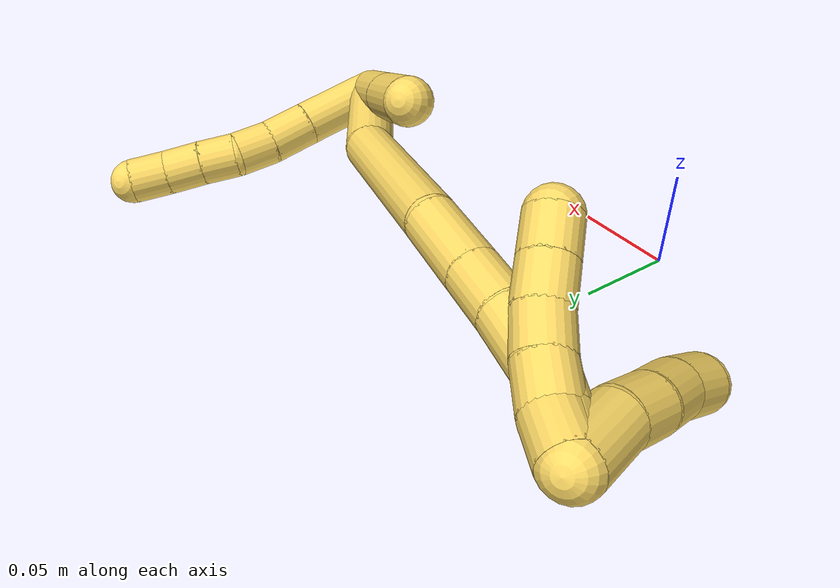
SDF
<sdf version="1.7">
 <world name="default">
  <model name="5">
   <static>0</static>
   <link name="5">
    <collision name="collision-cylinder-e_1_2_8">
     <pose>0.001556 0.017371 0.014116 -0.888427 0.069396 -0.033039</pose>
     <geometry><cylinder><radius>0.0125</radius><length>0.044875</length></cylinder></geometry>
     <surface>
      <friction><ode><mu>1.16</mu><mu2>1.16</mu2><slip1>0</slip1><slip2>0</slip2></ode></friction>
      <contact><ode><kp>1e+06</kp><kd>1</kd><max_vel>0</max_vel><min_depth>0.001</min_depth></ode></contact>
     </surface>
    </collision>
    <visual name="visual-cylinder-e_1_2_8">
     <pose>0.001556 0.017371 0.014116 -0.888427 0.069396 -0.033039</pose>
     <geometry><cylinder><radius>0.0125</radius><length>0.044875</length></cylinder></geometry>
     <material><ambient>1 0.858824 0.4 1</ambient></material>
    </visual>
    <collision name="collision-cylinder-e_2_8_9">
     <pose>0.003911 0.044136 0.035658 -0.901805 0.066678 -0.032292</pose>
     <geometry><cylinder><radius>0.0125</radius><length>0.024001</length></cylinder></geometry>
     <surface>
      <friction><ode><mu>1.16</mu><mu2>1.16</mu2><slip1>0</slip1><slip2>0</slip2></ode></friction>
      <contact><ode><kp>1e+06</kp><kd>1</kd><max_vel>0</max_vel><min_depth>0.001</min_depth></ode></contact>
     </surface>
    </collision>
    <visual name="visual-cylinder-e_2_8_9">
     <pose>0.003911 0.044136 0.035658 -0.901805 0.066678 -0.032292</pose>
     <geometry><cylinder><radius>0.0125</radius><length>0.024001</length></cylinder></geometry>
     <material><ambient>1 0.858824 0.4 1</ambient></material>
    </visual>
    <collision name="collision-cylinder-e_3_9_10">
     <pose>0.006406 0.061042 0.049979 -0.828285 0.164681 -0.07252</pose>
     <geometry><cylinder><radius>0.0125</radius><length>0.020676</length></cylinder></geometry>
     <surface>
      <friction><ode><mu>1.16</mu><mu2>1.16</mu2><slip1>0</slip1><slip2>0</slip2></ode></friction>
      <contact><ode><kp>1e+06</kp><kd>1</kd><max_vel>0</max_vel><min_depth>0.001</min_depth></ode></contact>
     </surface>
    </collision>
    <visual name="visual-cylinder-e_3_9_10">
     <pose>0.006406 0.061042 0.049979 -0.828285 0.164681 -0.07252</pose>
     <geometry><cylinder><radius>0.0125</radius><length>0.020676</length></cylinder></geometry>
     <material><ambient>1 0.858824 0.4 1</ambient></material>
    </visual>
    <collision name="collision-cylinder-e_4_10_11">
     <pose>0.011832 0.076625 0.061496 -1.05065 0.381661 -0.223026</pose>
     <geometry><cylinder><radius>0.0125</radius><length>0.02004</length></cylinder></geometry>
     <surface>
      <friction><ode><mu>1.16</mu><mu2>1.16</mu2><slip1>0</slip1><slip2>0</slip2></ode></friction>
      <contact><ode><kp>1e+06</kp><kd>1</kd><max_vel>0</max_vel><min_depth>0.001</min_depth></ode></contact>
     </surface>
    </collision>
    <visual name="visual-cylinder-e_4_10_11">
     <pose>0.011832 0.076625 0.061496 -1.05065 0.381661 -0.223026</pose>
     <geometry><cylinder><radius>0.0125</radius><length>0.02004</length></cylinder></geometry>
     <material><ambient>1 0.858824 0.4 1</ambient></material>
    </visual>
    <collision name="collision-cylinder-e_5_11_12">
     <pose>0.019026 0.093053 0.070586 -1.07991 0.35018 -0.211268</pose>
     <geometry><cylinder><radius>0.0125</radius><length>0.020182</length></cylinder></geometry>
     <surface>
      <friction><ode><mu>1.16</mu><mu2>1.16</mu2><slip1>0</slip1><slip2>0</slip2></ode></friction>
      <contact><ode><kp>1e+06</kp><kd>1</kd><max_vel>0</max_vel><min_depth>0.001</min_depth></ode></contact>
     </surface>
    </collision>
    <visual name="visual-cylinder-e_5_11_12">
     <pose>0.019026 0.093053 0.070586 -1.07991 0.35018 -0.211268</pose>
     <geometry><cylinder><radius>0.0125</radius><length>0.020182</length></cylinder></geometry>
     <material><ambient>1 0.858824 0.4 1</ambient></material>
    </visual>
    <collision name="collision-cylinder-e_6_12_6">
     <pose>0.025967 0.10939 0.080206 -0.997415 0.351136 -0.192629</pose>
     <geometry><cylinder><radius>0.0125</radius><length>0.020226</length></cylinder></geometry>
     <surface>
      <friction><ode><mu>1.16</mu><mu2>1.16</mu2><slip1>0</slip1><slip2>0</slip2></ode></friction>
      <contact><ode><kp>1e+06</kp><kd>1</kd><max_vel>0</max_vel><min_depth>0.001</min_depth></ode></contact>
     </surface>
    </collision>
    <visual name="visual-cylinder-e_6_12_6">
     <pose>0.025967 0.10939 0.080206 -0.997415 0.351136 -0.192629</pose>
     <geometry><cylinder><radius>0.0125</radius><length>0.020226</length></cylinder></geometry>
     <material><ambient>1 0.858824 0.4 1</ambient></material>
    </visual>
    <collision name="collision-cylinder-e_1_2_13">
     <pose>-0.012386 -0.009703 0.021059 0.43178 -0.490614 -0.109697</pose>
     <geometry><cylinder><radius>0.0125</radius><length>0.052575</length></cylinder></geometry>
     <surface>
      <friction><ode><mu>1.16</mu><mu2>1.16</mu2><slip1>0</slip1><slip2>0</slip2></ode></friction>
      <contact><ode><kp>1e+06</kp><kd>1</kd><max_vel>0</max_vel><min_depth>0.001</min_depth></ode></contact>
     </surface>
    </collision>
    <visual name="visual-cylinder-e_1_2_13">
     <pose>-0.012386 -0.009703 0.021059 0.43178 -0.490614 -0.109697</pose>
     <geometry><cylinder><radius>0.0125</radius><length>0.052575</length></cylinder></geometry>
     <material><ambient>1 0.858824 0.4 1</ambient></material>
    </visual>
    <collision name="collision-cylinder-e_2_13_5">
     <pose>-0.035987 -0.02822 0.06106 0.435473 -0.492675 -0.111147</pose>
     <geometry><cylinder><radius>0.0125</radius><length>0.047425</length></cylinder></geometry>
     <surface>
      <friction><ode><mu>1.16</mu><mu2>1.16</mu2><slip1>0</slip1><slip2>0</slip2></ode></friction>
      <contact><ode><kp>1e+06</kp><kd>1</kd><max_vel>0</max_vel><min_depth>0.001</min_depth></ode></contact>
     </surface>
    </collision>
    <visual name="visual-cylinder-e_2_13_5">
     <pose>-0.035987 -0.02822 0.06106 0.435473 -0.492675 -0.111147</pose>
     <geometry><cylinder><radius>0.0125</radius><length>0.047425</length></cylinder></geometry>
     <material><ambient>1 0.858824 0.4 1</ambient></material>
    </visual>
    <collision name="collision-cylinder-e_1_2_14">
     <pose>-0.021661 0.000817 0.028672 -0.028492 -0.646808 0.00955</pose>
     <geometry><cylinder><radius>0.0125</radius><length>0.071888</length></cylinder></geometry>
     <surface>
      <friction><ode><mu>1.16</mu><mu2>1.16</mu2><slip1>0</slip1><slip2>0</slip2></ode></friction>
      <contact><ode><kp>1e+06</kp><kd>1</kd><max_vel>0</max_vel><min_depth>0.001</min_depth></ode></contact>
     </surface>
    </collision>
    <visual name="visual-cylinder-e_1_2_14">
     <pose>-0.021661 0.000817 0.028672 -0.028492 -0.646808 0.00955</pose>
     <geometry><cylinder><radius>0.0125</radius><length>0.071888</length></cylinder></geometry>
     <material><ambient>1 0.858824 0.4 1</ambient></material>
    </visual>
    <collision name="collision-cylinder-e_2_14_15">
     <pose>-0.075424 -0.011544 0.089777 0.385959 -0.742114 -0.151769</pose>
     <geometry><cylinder><radius>0.0125</radius><length>0.094996</length></cylinder></geometry>
     <surface>
      <friction><ode><mu>1.16</mu><mu2>1.16</mu2><slip1>0</slip1><slip2>0</slip2></ode></friction>
      <contact><ode><kp>1e+06</kp><kd>1</kd><max_vel>0</max_vel><min_depth>0.001</min_depth></ode></contact>
     </surface>
    </collision>
    <visual name="visual-cylinder-e_2_14_15">
     <pose>-0.075424 -0.011544 0.089777 0.385959 -0.742114 -0.151769</pose>
     <geometry><cylinder><radius>0.0125</radius><length>0.094996</length></cylinder></geometry>
     <material><ambient>1 0.858824 0.4 1</ambient></material>
    </visual>
    <collision name="collision-cylinder-e_3_15_16">
     <pose>-0.1231 -0.028759 0.132415 0.376559 -0.956966 -0.197016</pose>
     <geometry><cylinder><radius>0.0125</radius><length>0.038104</length></cylinder></geometry>
     <surface>
      <friction><ode><mu>1.16</mu><mu2>1.16</mu2><slip1>0</slip1><slip2>0</slip2></ode></friction>
      <contact><ode><kp>1e+06</kp><kd>1</kd><max_vel>0</max_vel><min_depth>0.001</min_depth></ode></contact>
     </surface>
    </collision>
    <visual name="visual-cylinder-e_3_15_16">
     <pose>-0.1231 -0.028759 0.132415 0.376559 -0.956966 -0.197016</pose>
     <geometry><cylinder><radius>0.0125</radius><length>0.038104</length></cylinder></geometry>
     <material><ambient>1 0.858824 0.4 1</ambient></material>
    </visual>
    <collision name="collision-cylinder-e_4_16_17">
     <pose>-0.148916 -0.035444 0.149337 0.375829 -0.956699 -0.196564</pose>
     <geometry><cylinder><radius>0.0125</radius><length>0.025062</length></cylinder></geometry>
     <surface>
      <friction><ode><mu>1.16</mu><mu2>1.16</mu2><slip1>0</slip1><slip2>0</slip2></ode></friction>
      <contact><ode><kp>1e+06</kp><kd>1</kd><max_vel>0</max_vel><min_depth>0.001</min_depth></ode></contact>
     </surface>
    </collision>
    <visual name="visual-cylinder-e_4_16_17">
     <pose>-0.148916 -0.035444 0.149337 0.375829 -0.956699 -0.196564</pose>
     <geometry><cylinder><radius>0.0125</radius><length>0.025062</length></cylinder></geometry>
     <material><ambient>1 0.858824 0.4 1</ambient></material>
    </visual>
    <collision name="collision-cylinder-e_5_17_18">
     <pose>-0.171395 -0.0401 0.163116 0.276655 -1.03041 -0.157328</pose>
     <geometry><cylinder><radius>0.0125</radius><length>0.028541</length></cylinder></geometry>
     <surface>
      <friction><ode><mu>1.16</mu><mu2>1.16</mu2><slip1>0</slip1><slip2>0</slip2></ode></friction>
      <contact><ode><kp>1e+06</kp><kd>1</kd><max_vel>0</max_vel><min_depth>0.001</min_depth></ode></contact>
     </surface>
    </collision>
    <visual name="visual-cylinder-e_5_17_18">
     <pose>-0.171395 -0.0401 0.163116 0.276655 -1.03041 -0.157328</pose>
     <geometry><cylinder><radius>0.0125</radius><length>0.028541</length></cylinder></geometry>
     <material><ambient>1 0.858824 0.4 1</ambient></material>
    </visual>
    <collision name="collision-cylinder-e_6_18_19">
     <pose>-0.191017 -0.04168 0.177283 -0.059783 -0.803897 0.025419</pose>
     <geometry><cylinder><radius>0.0125</radius><length>0.020512</length></cylinder></geometry>
     <surface>
      <friction><ode><mu>1.16</mu><mu2>1.16</mu2><slip1>0</slip1><slip2>0</slip2></ode></friction>
      <contact><ode><kp>1e+06</kp><kd>1</kd><max_vel>0</max_vel><min_depth>0.001</min_depth></ode></contact>
     </surface>
    </collision>
    <visual name="visual-cylinder-e_6_18_19">
     <pose>-0.191017 -0.04168 0.177283 -0.059783 -0.803897 0.025419</pose>
     <geometry><cylinder><radius>0.0125</radius><length>0.020512</length></cylinder></geometry>
     <material><ambient>1 0.858824 0.4 1</ambient></material>
    </visual>
    <collision name="collision-cylinder-e_7_19_1">
     <pose>-0.204758 -0.041186 0.192678 -0.008278 -0.654069 0.002808</pose>
     <geometry><cylinder><radius>0.0125</radius><length>0.020896</length></cylinder></geometry>
     <surface>
      <friction><ode><mu>1.16</mu><mu2>1.16</mu2><slip1>0</slip1><slip2>0</slip2></ode></friction>
      <contact><ode><kp>1e+06</kp><kd>1</kd><max_vel>0</max_vel><min_depth>0.001</min_depth></ode></contact>
     </surface>
    </collision>
    <visual name="visual-cylinder-e_7_19_1">
     <pose>-0.204758 -0.041186 0.192678 -0.008278 -0.654069 0.002808</pose>
     <geometry><cylinder><radius>0.0125</radius><length>0.020896</length></cylinder></geometry>
     <material><ambient>1 0.858824 0.4 1</ambient></material>
    </visual>
    <collision name="collision-cylinder-e_1_1_20">
     <pose>-0.203924 -0.040848 0.194026 -3.10274 0.802551 -3.05007</pose>
     <geometry><cylinder><radius>0.0125</radius><length>0.02</length></cylinder></geometry>
     <surface>
      <friction><ode><mu>1.16</mu><mu2>1.16</mu2><slip1>0</slip1><slip2>0</slip2></ode></friction>
      <contact><ode><kp>1e+06</kp><kd>1</kd><max_vel>0</max_vel><min_depth>0.001</min_depth></ode></contact>
     </surface>
    </collision>
    <visual name="visual-cylinder-e_1_1_20">
     <pose>-0.203924 -0.040848 0.194026 -3.10274 0.802551 -3.05007</pose>
     <geometry><cylinder><radius>0.0125</radius><length>0.02</length></cylinder></geometry>
     <material><ambient>1 0.858824 0.4 1</ambient></material>
    </visual>
    <collision name="collision-cylinder-e_2_20_21">
     <pose>-0.18907 -0.042978 0.181122 2.75882 0.872984 2.35426</pose>
     <geometry><cylinder><radius>0.0125</radius><length>0.02</length></cylinder></geometry>
     <surface>
      <friction><ode><mu>1.16</mu><mu2>1.16</mu2><slip1>0</slip1><slip2>0</slip2></ode></friction>
      <contact><ode><kp>1e+06</kp><kd>1</kd><max_vel>0</max_vel><min_depth>0.001</min_depth></ode></contact>
     </surface>
    </collision>
    <visual name="visual-cylinder-e_2_20_21">
     <pose>-0.18907 -0.042978 0.181122 2.75882 0.872984 2.35426</pose>
     <geometry><cylinder><radius>0.0125</radius><length>0.02</length></cylinder></geometry>
     <material><ambient>1 0.858824 0.4 1</ambient></material>
    </visual>
    <collision name="collision-cylinder-e_3_21_22">
     <pose>-0.174269 -0.048755 0.169028 2.63828 0.79505 2.04272</pose>
     <geometry><cylinder><radius>0.0125</radius><length>0.02</length></cylinder></geometry>
     <surface>
      <friction><ode><mu>1.16</mu><mu2>1.16</mu2><slip1>0</slip1><slip2>0</slip2></ode></friction>
      <contact><ode><kp>1e+06</kp><kd>1</kd><max_vel>0</max_vel><min_depth>0.001</min_depth></ode></contact>
     </surface>
    </collision>
    <visual name="visual-cylinder-e_3_21_22">
     <pose>-0.174269 -0.048755 0.169028 2.63828 0.79505 2.04272</pose>
     <geometry><cylinder><radius>0.0125</radius><length>0.02</length></cylinder></geometry>
     <material><ambient>1 0.858824 0.4 1</ambient></material>
    </visual>
    <collision name="collision-cylinder-e_4_22_23">
     <pose>-0.160462 -0.057156 0.157388 2.40195 0.729839 1.55618</pose>
     <geometry><cylinder><radius>0.0125</radius><length>0.02</length></cylinder></geometry>
     <surface>
      <friction><ode><mu>1.16</mu><mu2>1.16</mu2><slip1>0</slip1><slip2>0</slip2></ode></friction>
      <contact><ode><kp>1e+06</kp><kd>1</kd><max_vel>0</max_vel><min_depth>0.001</min_depth></ode></contact>
     </surface>
    </collision>
    <visual name="visual-cylinder-e_4_22_23">
     <pose>-0.160462 -0.057156 0.157388 2.40195 0.729839 1.55618</pose>
     <geometry><cylinder><radius>0.0125</radius><length>0.02</length></cylinder></geometry>
     <material><ambient>1 0.858824 0.4 1</ambient></material>
    </visual>
    <collision name="collision-cylinder-e_5_23_4">
     <pose>-0.147145 -0.067173 0.146329 2.40916 0.727438 1.5633</pose>
     <geometry><cylinder><radius>0.0125</radius><length>0.02</length></cylinder></geometry>
     <surface>
      <friction><ode><mu>1.16</mu><mu2>1.16</mu2><slip1>0</slip1><slip2>0</slip2></ode></friction>
      <contact><ode><kp>1e+06</kp><kd>1</kd><max_vel>0</max_vel><min_depth>0.001</min_depth></ode></contact>
     </surface>
    </collision>
    <visual name="visual-cylinder-e_5_23_4">
     <pose>-0.147145 -0.067173 0.146329 2.40916 0.727438 1.5633</pose>
     <geometry><cylinder><radius>0.0125</radius><length>0.02</length></cylinder></geometry>
     <material><ambient>1 0.858824 0.4 1</ambient></material>
    </visual>
    <collision name="collision-cylinder-e_1_1_24">
     <pose>-0.210854 -0.046697 0.186805 2.76637 0.01717 0.090382</pose>
     <geometry><cylinder><radius>0.0125</radius><length>0.030452</length></cylinder></geometry>
     <surface>
      <friction><ode><mu>1.16</mu><mu2>1.16</mu2><slip1>0</slip1><slip2>0</slip2></ode></friction>
      <contact><ode><kp>1e+06</kp><kd>1</kd><max_vel>0</max_vel><min_depth>0.001</min_depth></ode></contact>
     </surface>
    </collision>
    <visual name="visual-cylinder-e_1_1_24">
     <pose>-0.210854 -0.046697 0.186805 2.76637 0.01717 0.090382</pose>
     <geometry><cylinder><radius>0.0125</radius><length>0.030452</length></cylinder></geometry>
     <material><ambient>1 0.858824 0.4 1</ambient></material>
    </visual>
    <collision name="collision-cylinder-e_2_24_25">
     <pose>-0.212705 -0.055432 0.162208 2.84778 -0.191438 -1.15114</pose>
     <geometry><cylinder><radius>0.0125</radius><length>0.022204</length></cylinder></geometry>
     <surface>
      <friction><ode><mu>1.16</mu><mu2>1.16</mu2><slip1>0</slip1><slip2>0</slip2></ode></friction>
      <contact><ode><kp>1e+06</kp><kd>1</kd><max_vel>0</max_vel><min_depth>0.001</min_depth></ode></contact>
     </surface>
    </collision>
    <visual name="visual-cylinder-e_2_24_25">
     <pose>-0.212705 -0.055432 0.162208 2.84778 -0.191438 -1.15114</pose>
     <geometry><cylinder><radius>0.0125</radius><length>0.022204</length></cylinder></geometry>
     <material><ambient>1 0.858824 0.4 1</ambient></material>
    </visual>
    <collision name="collision-cylinder-e_3_25_26">
     <pose>-0.216372 -0.060542 0.139931 2.97817 -0.128827 -1.33429</pose>
     <geometry><cylinder><radius>0.0125</radius><length>0.024209</length></cylinder></geometry>
     <surface>
      <friction><ode><mu>1.16</mu><mu2>1.16</mu2><slip1>0</slip1><slip2>0</slip2></ode></friction>
      <contact><ode><kp>1e+06</kp><kd>1</kd><max_vel>0</max_vel><min_depth>0.001</min_depth></ode></contact>
     </surface>
    </collision>
    <visual name="visual-cylinder-e_3_25_26">
     <pose>-0.216372 -0.060542 0.139931 2.97817 -0.128827 -1.33429</pose>
     <geometry><cylinder><radius>0.0125</radius><length>0.024209</length></cylinder></geometry>
     <material><ambient>1 0.858824 0.4 1</ambient></material>
    </visual>
    <collision name="collision-cylinder-e_4_26_3">
     <pose>-0.22095 -0.064683 0.117138 2.94436 -0.264409 -1.86227</pose>
     <geometry><cylinder><radius>0.0125</radius><length>0.023134</length></cylinder></geometry>
     <surface>
      <friction><ode><mu>1.16</mu><mu2>1.16</mu2><slip1>0</slip1><slip2>0</slip2></ode></friction>
      <contact><ode><kp>1e+06</kp><kd>1</kd><max_vel>0</max_vel><min_depth>0.001</min_depth></ode></contact>
     </surface>
    </collision>
    <visual name="visual-cylinder-e_4_26_3">
     <pose>-0.22095 -0.064683 0.117138 2.94436 -0.264409 -1.86227</pose>
     <geometry><cylinder><radius>0.0125</radius><length>0.023134</length></cylinder></geometry>
     <material><ambient>1 0.858824 0.4 1</ambient></material>
    </visual>
    <collision name="collision-sphere-3">
     <pose>-0.223973 -0.066871 0.10619 0 -0 0</pose>
     <geometry><sphere><radius>0.0125</radius></sphere></geometry>
     <surface>
      <friction><ode><mu>1.16</mu><mu2>1.16</mu2><slip1>0</slip1><slip2>0</slip2></ode></friction>
      <contact><ode><kp>1e+06</kp><kd>1</kd><max_vel>0</max_vel><min_depth>0.001</min_depth></ode></contact>
     </surface>
    </collision>
    <visual name="visual-sphere-3">
     <pose>-0.223973 -0.066871 0.10619 0 -0 0</pose>
     <geometry><sphere><radius>0.0125</radius></sphere></geometry>
     <material><ambient>1 0.858824 0.4 1</ambient></material>
    </visual>
    <collision name="collision-sphere-26">
     <pose>-0.217927 -0.062495 0.128087 0 -0 0</pose>
     <geometry><sphere><radius>0.0125</radius></sphere></geometry>
     <surface>
      <friction><ode><mu>1.16</mu><mu2>1.16</mu2><slip1>0</slip1><slip2>0</slip2></ode></friction>
      <contact><ode><kp>1e+06</kp><kd>1</kd><max_vel>0</max_vel><min_depth>0.001</min_depth></ode></contact>
     </surface>
    </collision>
    <visual name="visual-sphere-26">
     <pose>-0.217927 -0.062495 0.128087 0 -0 0</pose>
     <geometry><sphere><radius>0.0125</radius></sphere></geometry>
     <material><ambient>1 0.858824 0.4 1</ambient></material>
    </visual>
    <collision name="collision-sphere-25">
     <pose>-0.214817 -0.058589 0.151776 0 -0 0</pose>
     <geometry><sphere><radius>0.0125</radius></sphere></geometry>
     <surface>
      <friction><ode><mu>1.16</mu><mu2>1.16</mu2><slip1>0</slip1><slip2>0</slip2></ode></friction>
      <contact><ode><kp>1e+06</kp><kd>1</kd><max_vel>0</max_vel><min_depth>0.001</min_depth></ode></contact>
     </surface>
    </collision>
    <visual name="visual-sphere-25">
     <pose>-0.214817 -0.058589 0.151776 0 -0 0</pose>
     <geometry><sphere><radius>0.0125</radius></sphere></geometry>
     <material><ambient>1 0.858824 0.4 1</ambient></material>
    </visual>
    <collision name="collision-sphere-24">
     <pose>-0.210592 -0.052276 0.17264 0 -0 0</pose>
     <geometry><sphere><radius>0.0125</radius></sphere></geometry>
     <surface>
      <friction><ode><mu>1.16</mu><mu2>1.16</mu2><slip1>0</slip1><slip2>0</slip2></ode></friction>
      <contact><ode><kp>1e+06</kp><kd>1</kd><max_vel>0</max_vel><min_depth>0.001</min_depth></ode></contact>
     </surface>
    </collision>
    <visual name="visual-sphere-24">
     <pose>-0.210592 -0.052276 0.17264 0 -0 0</pose>
     <geometry><sphere><radius>0.0125</radius></sphere></geometry>
     <material><ambient>1 0.858824 0.4 1</ambient></material>
    </visual>
    <collision name="collision-sphere-4">
     <pose>-0.140495 -0.072168 0.140776 0 -0 0</pose>
     <geometry><sphere><radius>0.0125</radius></sphere></geometry>
     <surface>
      <friction><ode><mu>1.16</mu><mu2>1.16</mu2><slip1>0</slip1><slip2>0</slip2></ode></friction>
      <contact><ode><kp>1e+06</kp><kd>1</kd><max_vel>0</max_vel><min_depth>0.001</min_depth></ode></contact>
     </surface>
    </collision>
    <visual name="visual-sphere-4">
     <pose>-0.140495 -0.072168 0.140776 0 -0 0</pose>
     <geometry><sphere><radius>0.0125</radius></sphere></geometry>
     <material><ambient>1 0.858824 0.4 1</ambient></material>
    </visual>
    <collision name="collision-sphere-23">
     <pose>-0.153795 -0.062179 0.151882 0 -0 0</pose>
     <geometry><sphere><radius>0.0125</radius></sphere></geometry>
     <surface>
      <friction><ode><mu>1.16</mu><mu2>1.16</mu2><slip1>0</slip1><slip2>0</slip2></ode></friction>
      <contact><ode><kp>1e+06</kp><kd>1</kd><max_vel>0</max_vel><min_depth>0.001</min_depth></ode></contact>
     </surface>
    </collision>
    <visual name="visual-sphere-23">
     <pose>-0.153795 -0.062179 0.151882 0 -0 0</pose>
     <geometry><sphere><radius>0.0125</radius></sphere></geometry>
     <material><ambient>1 0.858824 0.4 1</ambient></material>
    </visual>
    <collision name="collision-sphere-22">
     <pose>-0.16713 -0.052133 0.162893 0 -0 0</pose>
     <geometry><sphere><radius>0.0125</radius></sphere></geometry>
     <surface>
      <friction><ode><mu>1.16</mu><mu2>1.16</mu2><slip1>0</slip1><slip2>0</slip2></ode></friction>
      <contact><ode><kp>1e+06</kp><kd>1</kd><max_vel>0</max_vel><min_depth>0.001</min_depth></ode></contact>
     </surface>
    </collision>
    <visual name="visual-sphere-22">
     <pose>-0.16713 -0.052133 0.162893 0 -0 0</pose>
     <geometry><sphere><radius>0.0125</radius></sphere></geometry>
     <material><ambient>1 0.858824 0.4 1</ambient></material>
    </visual>
    <collision name="collision-sphere-21">
     <pose>-0.181408 -0.045378 0.175162 0 -0 0</pose>
     <geometry><sphere><radius>0.0125</radius></sphere></geometry>
     <surface>
      <friction><ode><mu>1.16</mu><mu2>1.16</mu2><slip1>0</slip1><slip2>0</slip2></ode></friction>
      <contact><ode><kp>1e+06</kp><kd>1</kd><max_vel>0</max_vel><min_depth>0.001</min_depth></ode></contact>
     </surface>
    </collision>
    <visual name="visual-sphere-21">
     <pose>-0.181408 -0.045378 0.175162 0 -0 0</pose>
     <geometry><sphere><radius>0.0125</radius></sphere></geometry>
     <material><ambient>1 0.858824 0.4 1</ambient></material>
    </visual>
    <collision name="collision-sphere-20">
     <pose>-0.196733 -0.040578 0.187082 0 -0 0</pose>
     <geometry><sphere><radius>0.0125</radius></sphere></geometry>
     <surface>
      <friction><ode><mu>1.16</mu><mu2>1.16</mu2><slip1>0</slip1><slip2>0</slip2></ode></friction>
      <contact><ode><kp>1e+06</kp><kd>1</kd><max_vel>0</max_vel><min_depth>0.001</min_depth></ode></contact>
     </surface>
    </collision>
    <visual name="visual-sphere-20">
     <pose>-0.196733 -0.040578 0.187082 0 -0 0</pose>
     <geometry><sphere><radius>0.0125</radius></sphere></geometry>
     <material><ambient>1 0.858824 0.4 1</ambient></material>
    </visual>
    <collision name="collision-sphere-12">
     <pose>0.022488 0.101413 0.075055 0 -0 0</pose>
     <geometry><sphere><radius>0.0125</radius></sphere></geometry>
     <surface>
      <friction><ode><mu>1.16</mu><mu2>1.16</mu2><slip1>0</slip1><slip2>0</slip2></ode></friction>
      <contact><ode><kp>1e+06</kp><kd>1</kd><max_vel>0</max_vel><min_depth>0.001</min_depth></ode></contact>
     </surface>
    </collision>
    <visual name="visual-sphere-12">
     <pose>0.022488 0.101413 0.075055 0 -0 0</pose>
     <geometry><sphere><radius>0.0125</radius></sphere></geometry>
     <material><ambient>1 0.858824 0.4 1</ambient></material>
    </visual>
    <collision name="collision-sphere-11">
     <pose>0.015564 0.084694 0.066118 0 -0 0</pose>
     <geometry><sphere><radius>0.0125</radius></sphere></geometry>
     <surface>
      <friction><ode><mu>1.16</mu><mu2>1.16</mu2><slip1>0</slip1><slip2>0</slip2></ode></friction>
      <contact><ode><kp>1e+06</kp><kd>1</kd><max_vel>0</max_vel><min_depth>0.001</min_depth></ode></contact>
     </surface>
    </collision>
    <visual name="visual-sphere-11">
     <pose>0.015564 0.084694 0.066118 0 -0 0</pose>
     <geometry><sphere><radius>0.0125</radius></sphere></geometry>
     <material><ambient>1 0.858824 0.4 1</ambient></material>
    </visual>
    <collision name="collision-sphere-10">
     <pose>0.0081 0.068556 0.056875 0 -0 0</pose>
     <geometry><sphere><radius>0.0125</radius></sphere></geometry>
     <surface>
      <friction><ode><mu>1.16</mu><mu2>1.16</mu2><slip1>0</slip1><slip2>0</slip2></ode></friction>
      <contact><ode><kp>1e+06</kp><kd>1</kd><max_vel>0</max_vel><min_depth>0.001</min_depth></ode></contact>
     </surface>
    </collision>
    <visual name="visual-sphere-10">
     <pose>0.0081 0.068556 0.056875 0 -0 0</pose>
     <geometry><sphere><radius>0.0125</radius></sphere></geometry>
     <material><ambient>1 0.858824 0.4 1</ambient></material>
    </visual>
    <collision name="collision-sphere-9">
     <pose>0.004711 0.053528 0.043084 0 -0 0</pose>
     <geometry><sphere><radius>0.0125</radius></sphere></geometry>
     <surface>
      <friction><ode><mu>1.16</mu><mu2>1.16</mu2><slip1>0</slip1><slip2>0</slip2></ode></friction>
      <contact><ode><kp>1e+06</kp><kd>1</kd><max_vel>0</max_vel><min_depth>0.001</min_depth></ode></contact>
     </surface>
    </collision>
    <visual name="visual-sphere-9">
     <pose>0.004711 0.053528 0.043084 0 -0 0</pose>
     <geometry><sphere><radius>0.0125</radius></sphere></geometry>
     <material><ambient>1 0.858824 0.4 1</ambient></material>
    </visual>
    <collision name="collision-sphere-2">
     <geometry><sphere><radius>0.0125</radius></sphere></geometry>
     <surface>
      <friction><ode><mu>1.16</mu><mu2>1.16</mu2><slip1>0</slip1><slip2>0</slip2></ode></friction>
      <contact><ode><kp>1e+06</kp><kd>1</kd><max_vel>0</max_vel><min_depth>0.001</min_depth></ode></contact>
     </surface>
    </collision>
    <visual name="visual-sphere-2">
     <geometry><sphere><radius>0.0125</radius></sphere></geometry>
     <material><ambient>1 0.858824 0.4 1</ambient></material>
    </visual>
    <collision name="collision-sphere-19">
     <pose>-0.198402 -0.041255 0.184387 0 -0 0</pose>
     <geometry><sphere><radius>0.0125</radius></sphere></geometry>
     <surface>
      <friction><ode><mu>1.16</mu><mu2>1.16</mu2><slip1>0</slip1><slip2>0</slip2></ode></friction>
      <contact><ode><kp>1e+06</kp><kd>1</kd><max_vel>0</max_vel><min_depth>0.001</min_depth></ode></contact>
     </surface>
    </collision>
    <visual name="visual-sphere-19">
     <pose>-0.198402 -0.041255 0.184387 0 -0 0</pose>
     <geometry><sphere><radius>0.0125</radius></sphere></geometry>
     <material><ambient>1 0.858824 0.4 1</ambient></material>
    </visual>
    <collision name="collision-sphere-8">
     <pose>0.003112 0.034743 0.028231 0 -0 0</pose>
     <geometry><sphere><radius>0.0125</radius></sphere></geometry>
     <surface>
      <friction><ode><mu>1.16</mu><mu2>1.16</mu2><slip1>0</slip1><slip2>0</slip2></ode></friction>
      <contact><ode><kp>1e+06</kp><kd>1</kd><max_vel>0</max_vel><min_depth>0.001</min_depth></ode></contact>
     </surface>
    </collision>
    <visual name="visual-sphere-8">
     <pose>0.003112 0.034743 0.028231 0 -0 0</pose>
     <geometry><sphere><radius>0.0125</radius></sphere></geometry>
     <material><ambient>1 0.858824 0.4 1</ambient></material>
    </visual>
    <collision name="collision-sphere-6">
     <pose>0.029445 0.117367 0.085357 0 -0 0</pose>
     <geometry><sphere><radius>0.0125</radius></sphere></geometry>
     <surface>
      <friction><ode><mu>1.16</mu><mu2>1.16</mu2><slip1>0</slip1><slip2>0</slip2></ode></friction>
      <contact><ode><kp>1e+06</kp><kd>1</kd><max_vel>0</max_vel><min_depth>0.001</min_depth></ode></contact>
     </surface>
    </collision>
    <visual name="visual-sphere-6">
     <pose>0.029445 0.117367 0.085357 0 -0 0</pose>
     <geometry><sphere><radius>0.0125</radius></sphere></geometry>
     <material><ambient>1 0.858824 0.4 1</ambient></material>
    </visual>
    <collision name="collision-sphere-13">
     <pose>-0.024772 -0.019407 0.042117 0 -0 0</pose>
     <geometry><sphere><radius>0.0125</radius></sphere></geometry>
     <surface>
      <friction><ode><mu>1.16</mu><mu2>1.16</mu2><slip1>0</slip1><slip2>0</slip2></ode></friction>
      <contact><ode><kp>1e+06</kp><kd>1</kd><max_vel>0</max_vel><min_depth>0.001</min_depth></ode></contact>
     </surface>
    </collision>
    <visual name="visual-sphere-13">
     <pose>-0.024772 -0.019407 0.042117 0 -0 0</pose>
     <geometry><sphere><radius>0.0125</radius></sphere></geometry>
     <material><ambient>1 0.858824 0.4 1</ambient></material>
    </visual>
    <collision name="collision-sphere-5">
     <pose>-0.047203 -0.037033 0.080002 0 -0 0</pose>
     <geometry><sphere><radius>0.0125</radius></sphere></geometry>
     <surface>
      <friction><ode><mu>1.16</mu><mu2>1.16</mu2><slip1>0</slip1><slip2>0</slip2></ode></friction>
      <contact><ode><kp>1e+06</kp><kd>1</kd><max_vel>0</max_vel><min_depth>0.001</min_depth></ode></contact>
     </surface>
    </collision>
    <visual name="visual-sphere-5">
     <pose>-0.047203 -0.037033 0.080002 0 -0 0</pose>
     <geometry><sphere><radius>0.0125</radius></sphere></geometry>
     <material><ambient>1 0.858824 0.4 1</ambient></material>
    </visual>
    <collision name="collision-sphere-14">
     <pose>-0.043323 0.001634 0.057344 0 -0 0</pose>
     <geometry><sphere><radius>0.0125</radius></sphere></geometry>
     <surface>
      <friction><ode><mu>1.16</mu><mu2>1.16</mu2><slip1>0</slip1><slip2>0</slip2></ode></friction>
      <contact><ode><kp>1e+06</kp><kd>1</kd><max_vel>0</max_vel><min_depth>0.001</min_depth></ode></contact>
     </surface>
    </collision>
    <visual name="visual-sphere-14">
     <pose>-0.043323 0.001634 0.057344 0 -0 0</pose>
     <geometry><sphere><radius>0.0125</radius></sphere></geometry>
     <material><ambient>1 0.858824 0.4 1</ambient></material>
    </visual>
    <collision name="collision-sphere-15">
     <pose>-0.107526 -0.024723 0.12221 0 -0 0</pose>
     <geometry><sphere><radius>0.0125</radius></sphere></geometry>
     <surface>
      <friction><ode><mu>1.16</mu><mu2>1.16</mu2><slip1>0</slip1><slip2>0</slip2></ode></friction>
      <contact><ode><kp>1e+06</kp><kd>1</kd><max_vel>0</max_vel><min_depth>0.001</min_depth></ode></contact>
     </surface>
    </collision>
    <visual name="visual-sphere-15">
     <pose>-0.107526 -0.024723 0.12221 0 -0 0</pose>
     <geometry><sphere><radius>0.0125</radius></sphere></geometry>
     <material><ambient>1 0.858824 0.4 1</ambient></material>
    </visual>
    <collision name="collision-sphere-16">
     <pose>-0.138674 -0.032794 0.14262 0 -0 0</pose>
     <geometry><sphere><radius>0.0125</radius></sphere></geometry>
     <surface>
      <friction><ode><mu>1.16</mu><mu2>1.16</mu2><slip1>0</slip1><slip2>0</slip2></ode></friction>
      <contact><ode><kp>1e+06</kp><kd>1</kd><max_vel>0</max_vel><min_depth>0.001</min_depth></ode></contact>
     </surface>
    </collision>
    <visual name="visual-sphere-16">
     <pose>-0.138674 -0.032794 0.14262 0 -0 0</pose>
     <geometry><sphere><radius>0.0125</radius></sphere></geometry>
     <material><ambient>1 0.858824 0.4 1</ambient></material>
    </visual>
    <collision name="collision-sphere-17">
     <pose>-0.159157 -0.038095 0.156054 0 -0 0</pose>
     <geometry><sphere><radius>0.0125</radius></sphere></geometry>
     <surface>
      <friction><ode><mu>1.16</mu><mu2>1.16</mu2><slip1>0</slip1><slip2>0</slip2></ode></friction>
      <contact><ode><kp>1e+06</kp><kd>1</kd><max_vel>0</max_vel><min_depth>0.001</min_depth></ode></contact>
     </surface>
    </collision>
    <visual name="visual-sphere-17">
     <pose>-0.159157 -0.038095 0.156054 0 -0 0</pose>
     <geometry><sphere><radius>0.0125</radius></sphere></geometry>
     <material><ambient>1 0.858824 0.4 1</ambient></material>
    </visual>
    <collision name="collision-sphere-18">
     <pose>-0.183632 -0.042105 0.170179 0 -0 0</pose>
     <geometry><sphere><radius>0.0125</radius></sphere></geometry>
     <surface>
      <friction><ode><mu>1.16</mu><mu2>1.16</mu2><slip1>0</slip1><slip2>0</slip2></ode></friction>
      <contact><ode><kp>1e+06</kp><kd>1</kd><max_vel>0</max_vel><min_depth>0.001</min_depth></ode></contact>
     </surface>
    </collision>
    <visual name="visual-sphere-18">
     <pose>-0.183632 -0.042105 0.170179 0 -0 0</pose>
     <geometry><sphere><radius>0.0125</radius></sphere></geometry>
     <material><ambient>1 0.858824 0.4 1</ambient></material>
    </visual>
    <collision name="collision-sphere-1">
     <pose>-0.211115 -0.041118 0.200969 0 -0 0</pose>
     <geometry><sphere><radius>0.0125</radius></sphere></geometry>
     <surface>
      <friction><ode><mu>1.16</mu><mu2>1.16</mu2><slip1>0</slip1><slip2>0</slip2></ode></friction>
      <contact><ode><kp>1e+06</kp><kd>1</kd><max_vel>0</max_vel><min_depth>0.001</min_depth></ode></contact>
     </surface>
    </collision>
    <visual name="visual-sphere-1">
     <pose>-0.211115 -0.041118 0.200969 0 -0 0</pose>
     <geometry><sphere><radius>0.0125</radius></sphere></geometry>
     <material><ambient>1 0.858824 0.4 1</ambient></material>
    </visual>
    <inertial>
     <pose>-0.09352 -0.013009 0.099795 0 -0 0</pose>
     <mass>0.75</mass>
     <inertia>
      <ixx>0.000103</ixx>
      <ixy>0</ixy>
      <ixz>0</ixz>
      <iyy>0.000139</iyy>
      <iyz>0</iyz>
      <izz>0.000127</izz>
     </inertia>
    </inertial>
   </link>
   <pose>0.174474 0.062081 0.04339 -1.02772 -0.559111 0.169473</pose>
  </model>
 </world>
</sdf>
